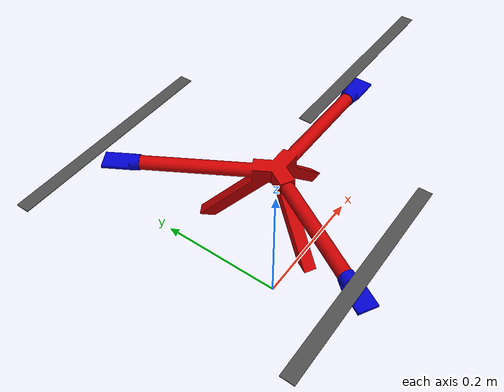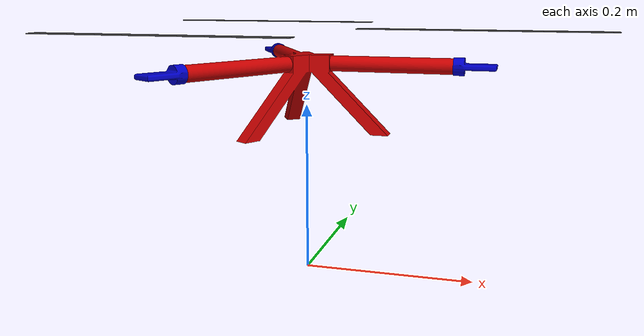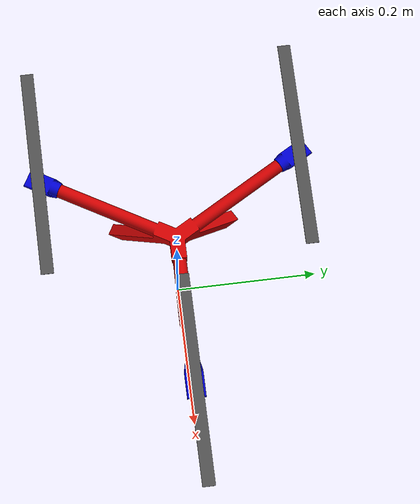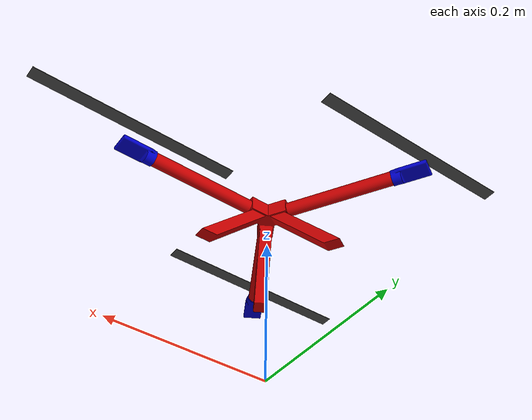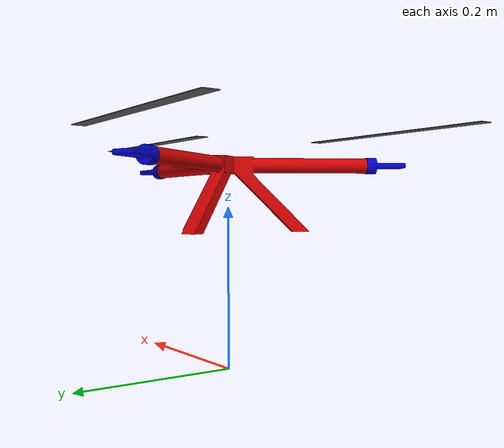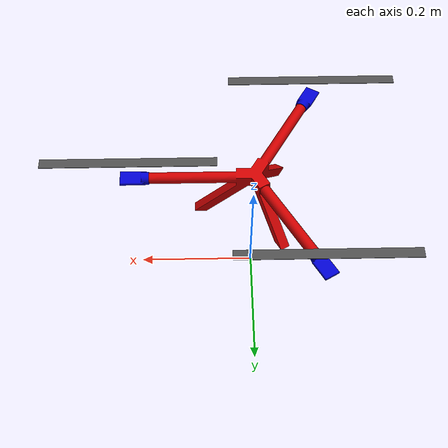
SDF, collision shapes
<?xml version="1.0" encoding="UTF-8"?>
<sdf version='1.9'>
  <model name='tricopter_base'>
    <pose>0 0 .24 0 0 0</pose>
    <self_collide>false</self_collide>
    <static>false</static>
    <link name="base_link">
      <inertial auto="true" />
      <gravity>true</gravity>
      <velocity_decay/>
      <visual name="base_link_visual">
        <pose>0 0 0 0 0 0</pose>
        <geometry>
          <mesh>
            <scale>0.001 0.001 0.001</scale>
            <uri>model://tricopter_base/meshes/tricopter_frame.stl</uri>
          </mesh>
        </geometry>
        <material>
          <ambient>0.8 0.0 0.0 1</ambient>
          <diffuse>0.8 0.0 0.0 1</diffuse>
          <specular>0.5 0.0 0.0 1</specular>
        </material>
      </visual>
      <collision name="base_link_collision">
        <pose>0 0 0 0 0 0</pose>
        <geometry>
          <mesh>
            <scale>0.001 0.001 0.001</scale>
            <uri>model://tricopter_base/meshes/tricopter_frame.stl</uri>
          </mesh>
        </geometry>
        <surface>
          <contact>
            <ode>
              <min_depth>0.001</min_depth>
              <max_vel>0</max_vel>
            </ode>
          </contact>
          <friction>
            <ode/>
          </friction>
        </surface>
      </collision>
      <sensor name="air_pressure_sensor" type="air_pressure">
        <always_on>1</always_on>
        <update_rate>50</update_rate>
        <air_pressure>
          <pressure>
            <noise type="gaussian">
              <mean>0</mean>
              <stddev>0.01</stddev>
            </noise>
          </pressure>
        </air_pressure>
      </sensor>
      <sensor name="imu_sensor" type="imu">
        <always_on>1</always_on>
        <update_rate>250</update_rate>
      </sensor>
    </link>
    <link name="rotor_0_base">
      <gravity>true</gravity>
      <self_collide>false</self_collide>
      <velocity_decay/>
      <pose>0 0 0 0 0 0</pose>
      <inertial>
          <mass>0.05</mass>
          <inertia>
            <ixx>3.8464910483993325e-07</ixx>
            <iyy>3.8464910483993325e-07</iyy>
            <izz>3.8464910483993325e-07</izz>
          </inertia>
        </inertial>
      <visual name="rotor_0_base_visual">
        <pose>0 0 0 0 0 0</pose>
        <geometry>
          <mesh>
            <scale>0.001 0.001 0.001</scale>
            <uri>model://tricopter_base/meshes/motor_base.stl</uri>
          </mesh>
        </geometry>
        <material>
          <ambient>0.0 0.0 0.5 1.0</ambient> <!-- Blue color with full opacity -->
          <diffuse>0.0 0.0 0.8 1.0</diffuse> <!-- Slightly lighter blue color for diffuse reflection -->
          <specular>0.5 0.5 0.5 1.0</specular> <!-- Grey color for specular highlight -->
        </material>
      </visual>
      <collision name="rotor_0_base_collision">
        <pose>0 0 0 0 0 0</pose>
        <geometry>
          <mesh>
            <scale>0.001 0.001 0.001</scale>
            <uri>model://tricopter_base/meshes/motor_base.stl</uri>
          </mesh>
        </geometry>
        <surface>
          <contact>
            <ode>
              <min_depth>0.001</min_depth>
              <max_vel>0</max_vel>
            </ode>
          </contact>
          <friction>
            <ode/>
          </friction>
        </surface>
      </collision>
    </link>
    <link name="rotor_0">
      <gravity>true</gravity>
      <self_collide>false</self_collide>
      <velocity_decay/>
      <pose>0.2 0 0.05 0 0 0</pose>
      <inertial>
          <mass>0.4</mass>
          <inertia>
            <ixx>3.8464910483993325e-07</ixx>
            <iyy>2.6115851691700804e-05</iyy>
            <izz>2.649858234714004e-05</izz>
          </inertia>
        </inertial>
      <visual name="rotor_0_visual">
        <pose>-0.022 -0.14638461538461536 -0.016 0 0 0</pose>
        <geometry>
          <mesh>
            <scale>0.8461538461538461 0.8461538461538461 0.8461538461538461</scale>
            <uri>model://tricopter_base/meshes/1345_prop_ccw.stl</uri>
          </mesh>
        </geometry>
        <material>
          <script>
            <name>Gazebo/DarkGrey</name>
            <uri>file://media/materials/scripts/gazebo.material</uri>
          </script>
        </material>
      </visual>
      <visual name="rotor_0_visual_motor_bell">
        <pose>0 0 -.032 0 0 0</pose>
        <geometry>
          <mesh>
            <scale>1 1 1</scale>
            <uri>model://tricopter_base/meshes/5010Bell.dae</uri>
          </mesh>
        </geometry>
      </visual>
      <collision name="rotor_0_collision">
        <pose>0 0 0 0 0 0 </pose>
        <geometry>
          <box>
            <size>0.2792307692307692 0.016923076923076923 0.0008461538461538462</size>
          </box>
        </geometry>
        <surface>
          <contact>
            <ode>
              <min_depth>0.001</min_depth>
              <max_vel>0</max_vel>
            </ode>
          </contact>
          <friction>
            <ode/>
          </friction>
        </surface>
      </collision>
    </link>
    <joint name="rotor_0_joint" type="revolute">
      <parent>base_link</parent>
      <child>rotor_0_base</child>
      <pose>0 0 0.009 0 0 0</pose>
      <axis>
        <xyz>1 0 0</xyz>
        <limit>
          <lower>-1e+16</lower>
          <upper>1e+16</upper>
        </limit>
        <dynamics>
          <spring_reference>0</spring_reference>
          <spring_stiffness>0</spring_stiffness>
        </dynamics>
      </axis>
    </joint>
    <joint name="rotor_0_prop_joint" type="revolute">
      <parent>rotor_0_base</parent>
      <child>rotor_0</child>
      <axis>
        <xyz>0 0 1</xyz>
        <limit>
          <lower>-1e+16</lower>
          <upper>1e+16</upper>
        </limit>
        <dynamics>
          <spring_reference>0</spring_reference>
          <spring_stiffness>0</spring_stiffness>
        </dynamics>
      </axis>
    </joint>
    <link name="rotor_1_base">
      <gravity>true</gravity>
      <self_collide>false</self_collide>
      <velocity_decay/>
      <pose>0 0 0 0 0 2.094395</pose>
      <inertial>
          <mass>0.05</mass>
          <inertia>
            <ixx>3.8464910483993325e-07</ixx>
            <iyy>3.8464910483993325e-07</iyy>
            <izz>3.8464910483993325e-07</izz>
          </inertia>
        </inertial>
      <visual name="rotor_1_base_visual">
        <pose>0 0 0 0 0 0</pose>
        <geometry>
          <mesh>
            <scale>0.001 0.001 0.001</scale>
            <uri>model://tricopter_base/meshes/motor_base.stl</uri>
          </mesh>
        </geometry>
        <material>
          <ambient>0.0 0.0 0.5 1.0</ambient> <!-- Blue color with full opacity -->
          <diffuse>0.0 0.0 0.8 1.0</diffuse> <!-- Slightly lighter blue color for diffuse reflection -->
          <specular>0.5 0.5 0.5 1.0</specular> <!-- Grey color for specular highlight -->
        </material>
      </visual>
      <collision name="rotor_1_base_collision">
        <pose>0 0 0 0 0 0</pose>
        <geometry>
          <mesh>
            <scale>0.001 0.001 0.001</scale>
            <uri>model://tricopter_base/meshes/motor_base.stl</uri>
          </mesh>
        </geometry>
        <surface>
          <contact>
            <ode>
              <min_depth>0.001</min_depth>
              <max_vel>0</max_vel>
            </ode>
          </contact>
          <friction>
            <ode/>
          </friction>
        </surface>
      </collision>
    </link>
    <link name="rotor_1">
      <gravity>true</gravity>
      <self_collide>false</self_collide>
      <velocity_decay/>
      <pose>-0.1 0.1732 0.05 0 0 0</pose>
      <inertial>
          <mass>0.016076923076923075</mass>
          <inertia>
            <ixx>3.8464910483993325e-07</ixx>
            <iyy>2.6115851691700804e-05</iyy>
            <izz>2.649858234714004e-05</izz>
          </inertia>
        </inertial>
      <visual name="rotor_1_visual">
        <pose>-0.022 -0.14638461538461536 -0.016 0 0 0</pose>
        <geometry>
          <mesh>
            <scale>0.8461538461538461 0.8461538461538461 0.8461538461538461</scale>
            <uri>model://tricopter_base/meshes/1345_prop_ccw.stl</uri>
          </mesh>
        </geometry>
        <material>
          <script>
            <name>Gazebo/DarkGrey</name>
            <uri>file://media/materials/scripts/gazebo.material</uri>
          </script>
        </material>
      </visual>
      <visual name="rotor_1_visual_motor_top">
        <pose>0 0 -.032 0 0 0</pose>
        <geometry>
          <mesh>
            <scale>1 1 1</scale>
            <uri>model://tricopter_base/meshes/5010Bell.dae</uri>
          </mesh>
        </geometry>
      </visual>
      <collision name="rotor_1_collision">
        <pose>0 0 0 0 0 0 </pose>
        <geometry>
          <box>
            <size>0.2792307692307692 0.016923076923076923 0.0008461538461538462</size>
          </box>
        </geometry>
        <surface>
          <contact>
            <ode>
              <min_depth>0.001</min_depth>
              <max_vel>0</max_vel>
            </ode>
          </contact>
          <friction>
            <ode/>
          </friction>
        </surface>
      </collision>
    </link>
    <joint name="rotor_1_prop_joint" type="revolute">
      <parent>rotor_1_base</parent>
      <child>rotor_1</child>
      <axis>
        <xyz>0 0 1</xyz>
        <limit>
          <lower>-1e+16</lower>
          <upper>1e+16</upper>
        </limit>
        <dynamics>
          <spring_reference>0</spring_reference>
          <spring_stiffness>0</spring_stiffness>
        </dynamics>
      </axis>
    </joint>
    <joint name="rotor_1_joint" type="revolute">
      <parent>base_link</parent>
      <child>rotor_1_base</child>
      <pose>0 0 0.009 0 0 0</pose>
      <axis>
        <xyz>1 0 0</xyz>
        <limit>
          <lower>-1e+16</lower>
          <upper>1e+16</upper>
        </limit>
        <dynamics>
          <spring_reference>0</spring_reference>
          <spring_stiffness>0</spring_stiffness>
        </dynamics>
      </axis>
    </joint>
    <link name="rotor_2_base">
      <gravity>true</gravity>
      <self_collide>false</self_collide>
      <velocity_decay/>
      <pose>0 0 0 0 0 -2.094395</pose>
      <inertial>
          <mass>0.05</mass>
          <inertia>
            <ixx>3.8464910483993325e-07</ixx>
            <iyy>3.8464910483993325e-07</iyy>
            <izz>3.8464910483993325e-07</izz>
          </inertia>
        </inertial>
      <visual name="rotor_2_base_visual">
        <pose>0 0 0 0 0 0</pose>
        <geometry>
          <mesh>
            <scale>0.001 0.001 0.001</scale>
            <uri>model://tricopter_base/meshes/motor_base.stl</uri>
          </mesh>
        </geometry>
        <material>
          <ambient>0.0 0.0 0.5 1.0</ambient> <!-- Blue color with full opacity -->
          <diffuse>0.0 0.0 0.8 1.0</diffuse> <!-- Slightly lighter blue color for diffuse reflection -->
          <specular>0.5 0.5 0.5 1.0</specular> <!-- Grey color for specular highlight -->
        </material>
      </visual>
      <collision name="rotor_2_base_collision">
        <pose>0 0 0 0 0 0</pose>
        <geometry>
          <mesh>
            <scale>0.001 0.001 0.001</scale>
            <uri>model://tricopter_base/meshes/motor_base.stl</uri>
          </mesh>
        </geometry>
        <surface>
          <contact>
            <ode>
              <min_depth>0.001</min_depth>
              <max_vel>0</max_vel>
            </ode>
          </contact>
          <friction>
            <ode/>
          </friction>
        </surface>
      </collision>
    </link>
    <link name="rotor_2">
      <gravity>true</gravity>
      <self_collide>false</self_collide>
      <velocity_decay/>
      <pose>-0.1 -0.1732 0.05 0 0 0</pose>
      <inertial>
          <mass>0.016076923076923075</mass>
          <inertia>
            <ixx>3.8464910483993325e-07</ixx>
            <iyy>2.6115851691700804e-05</iyy>
            <izz>2.649858234714004e-05</izz>
          </inertia>
        </inertial>
      <visual name="rotor_2_visual">
        <pose>-0.022 -0.14638461538461536 -0.016 0 0 0</pose>
        <geometry>
          <mesh>
            <scale>0.8461538461538461 0.8461538461538461 0.8461538461538461</scale>
            <uri>model://tricopter_base/meshes/1345_prop_ccw.stl</uri>
          </mesh>
        </geometry>
        <material>
          <script>
            <name>Gazebo/DarkGrey</name>
            <uri>file://media/materials/scripts/gazebo.material</uri>
          </script>
        </material>
      </visual>
      <visual name="rotor_2_visual_motor_top">
        <pose>0 0 -.032 0 0 0</pose>
        <geometry>
          <mesh>
            <scale>1 1 1</scale>
            <uri>model://tricopter_base/meshes/5010Bell.dae</uri>
          </mesh>
        </geometry>
      </visual>
      <collision name="rotor_2_collision">
        <pose>0 0 0 0 0 0 </pose>
        <geometry>
          <box>
            <size>0.2792307692307692 0.016923076923076923 0.0008461538461538462</size>
          </box>
        </geometry>
        <surface>
          <contact>
            <ode>
              <min_depth>0.001</min_depth>
              <max_vel>0</max_vel>
            </ode>
          </contact>
          <friction>
            <ode/>
          </friction>
        </surface>
      </collision>
    </link>
    <joint name="rotor_2_prop_joint" type="revolute">
      <parent>rotor_2_base</parent>
      <child>rotor_2</child>
      <axis>
        <xyz>0 0 1</xyz>
        <limit>
          <lower>-1e+16</lower>
          <upper>1e+16</upper>
        </limit>
        <dynamics>
          <spring_reference>0</spring_reference>
          <spring_stiffness>0</spring_stiffness>
        </dynamics>
      </axis>
    </joint>
    <joint name="rotor_2_joint" type="revolute">
      <parent>base_link</parent>
      <child>rotor_2_base</child>
      <pose>0 0 0.009 0 0 0</pose>
      <axis>
        <xyz>1 0 0</xyz>
        <limit>
          <lower>-1e+16</lower>
          <upper>1e+16</upper>
        </limit>
        <dynamics>
          <spring_reference>0</spring_reference>
          <spring_stiffness>0</spring_stiffness>
        </dynamics>
      </axis>
    </joint>

    <plugin filename="gz-sim-multicopter-motor-model-system" name="gz::sim::systems::MulticopterMotorModel">
      <jointName>rotor_0_prop_joint</jointName>
      <linkName>rotor_0</linkName>
      <turningDirection>ccw</turningDirection>
      <timeConstantUp>0.0125</timeConstantUp>
      <timeConstantDown>0.025</timeConstantDown>
      <maxRotVelocity>1000.0</maxRotVelocity>
      <motorConstant>8.54858e-06</motorConstant>
      <momentConstant>0.016</momentConstant>
      <commandSubTopic>command/motor_speed</commandSubTopic>
      <motorNumber>0</motorNumber>
      <rotorDragCoefficient>8.06428e-05</rotorDragCoefficient>
      <rollingMomentCoefficient>1e-06</rollingMomentCoefficient>
      <rotorVelocitySlowdownSim>10</rotorVelocitySlowdownSim>
      <motorType>velocity</motorType>
    </plugin>
    <plugin filename="gz-sim-multicopter-motor-model-system" name="gz::sim::systems::MulticopterMotorModel">
      <jointName>rotor_1_prop_joint</jointName>
      <linkName>rotor_1</linkName>
      <turningDirection>ccw</turningDirection>
      <timeConstantUp>0.0125</timeConstantUp>
      <timeConstantDown>0.025</timeConstantDown>
      <maxRotVelocity>1000.0</maxRotVelocity>
      <motorConstant>8.54858e-06</motorConstant>
      <momentConstant>0.016</momentConstant>
      <commandSubTopic>command/motor_speed</commandSubTopic>
      <motorNumber>1</motorNumber>
      <rotorDragCoefficient>8.06428e-05</rotorDragCoefficient>
      <rollingMomentCoefficient>1e-06</rollingMomentCoefficient>
      <rotorVelocitySlowdownSim>10</rotorVelocitySlowdownSim>
      <motorType>velocity</motorType>
    </plugin>
    <plugin filename="gz-sim-multicopter-motor-model-system" name="gz::sim::systems::MulticopterMotorModel">
      <jointName>rotor_2_prop_joint</jointName>
      <linkName>rotor_2</linkName>
      <turningDirection>ccw</turningDirection>
      <timeConstantUp>0.0125</timeConstantUp>
      <timeConstantDown>0.025</timeConstantDown>
      <maxRotVelocity>1000.0</maxRotVelocity>
      <motorConstant>8.54858e-06</motorConstant>
      <momentConstant>0.016</momentConstant>
      <commandSubTopic>command/motor_speed</commandSubTopic>
      <motorNumber>2</motorNumber>
      <rotorDragCoefficient>8.06428e-05</rotorDragCoefficient>
      <rollingMomentCoefficient>1e-06</rollingMomentCoefficient>
      <rotorVelocitySlowdownSim>10</rotorVelocitySlowdownSim>
      <motorType>velocity</motorType>
    </plugin>
    <plugin filename="gz-sim-joint-controller-system" name="gz::sim::systems::JointController">
      <joint_name>rotor_0_joint</joint_name>
      <use_actuator_msg>true</use_actuator_msg>
      <actuator_number>0</actuator_number>
    </plugin>
    <plugin filename="gz-sim-joint-controller-system" name="gz::sim::systems::JointController">
      <joint_name>rotor_1_joint</joint_name>
      <use_actuator_msg>true</use_actuator_msg>
      <actuator_number>1</actuator_number>
    </plugin>
    <plugin filename="gz-sim-joint-controller-system" name="gz::sim::systems::JointController">
      <joint_name>rotor_2_joint</joint_name>
      <use_actuator_msg>true</use_actuator_msg>
      <actuator_number>2</actuator_number>
    </plugin>
  </model>
</sdf>
